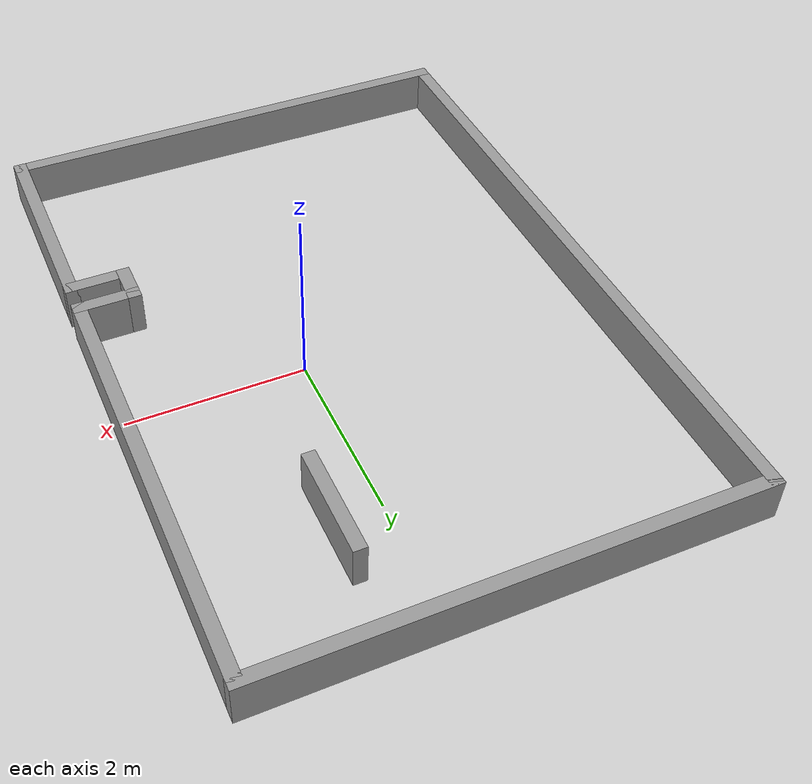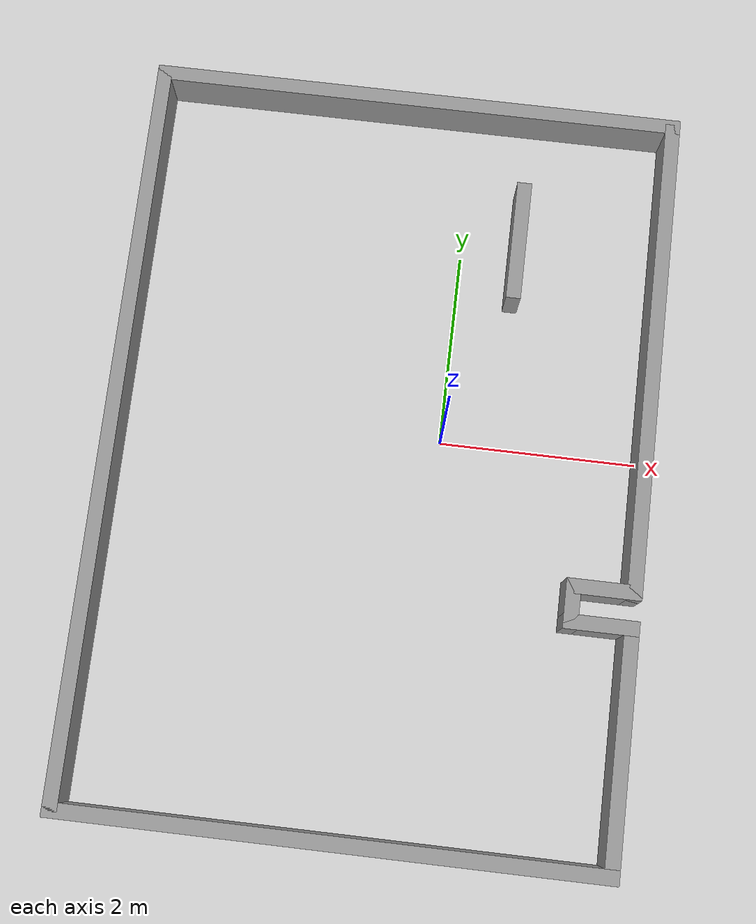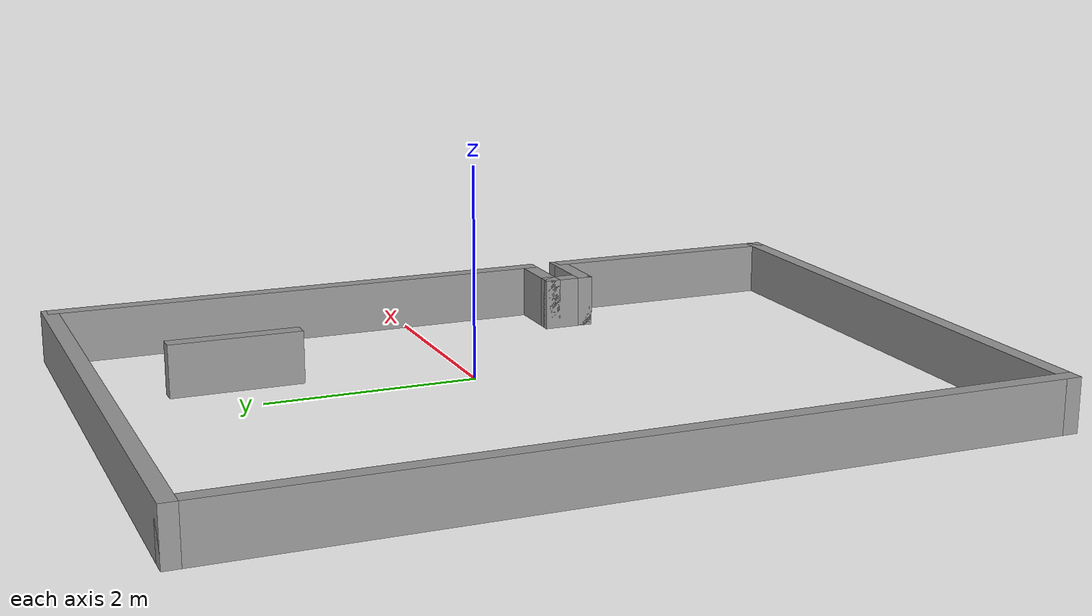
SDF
<?xml version='1.0'?>
<sdf version='1.7'>
  <model name='downstairs_building'>
    <pose>-0.638414 -0.270406 0 0 -0 0</pose>
    <link name='Wall_10'>
      <collision name='Wall_10_Collision'>
        <geometry>
          <box>
            <size>0.5 0.15 0.5</size>
          </box>
        </geometry>
        <pose>0 0 0.25 0 -0 0</pose>
      </collision>
      <visual name='Wall_10_Visual'>
        <pose>0 0 0.25 0 -0 0</pose>
        <geometry>
          <box>
            <size>0.5 0.15 0.5</size>
          </box>
        </geometry>
        <material>
          <script>
            <uri>file://media/materials/scripts/gazebo.material</uri>
            <name>Gazebo/Grey</name>
          </script>
          <ambient>1 1 1 1</ambient>
        </material>
        <meta>
          <layer>0</layer>
        </meta>
      </visual>
      <pose>2.075 -1.275 0 0 -0 1.5708</pose>
    </link>
    <link name='Wall_11'>
      <collision name='Wall_11_Collision'>
        <geometry>
          <box>
            <size>0.75 0.15 0.5</size>
          </box>
        </geometry>
        <pose>0 0 0.25 0 -0 0</pose>
      </collision>
      <visual name='Wall_11_Visual'>
        <pose>0 0 0.25 0 -0 0</pose>
        <geometry>
          <box>
            <size>0.75 0.15 0.5</size>
          </box>
        </geometry>
        <material>
          <script>
            <uri>file://media/materials/scripts/gazebo.material</uri>
            <name>Gazebo/Grey</name>
          </script>
          <ambient>1 1 1 1</ambient>
        </material>
        <meta>
          <layer>0</layer>
        </meta>
      </visual>
      <pose>2.375 -1.1 0 0 -0 0</pose>
    </link>
    <link name='Wall_12'>
      <collision name='Wall_12_Collision'>
        <geometry>
          <box>
            <size>5 0.15 0.5</size>
          </box>
        </geometry>
        <pose>0 0 0.25 0 -0 0</pose>
      </collision>
      <visual name='Wall_12_Visual'>
        <pose>0 0 0.25 0 -0 0</pose>
        <geometry>
          <box>
            <size>5 0.15 0.5</size>
          </box>
        </geometry>
        <material>
          <script>
            <uri>file://media/materials/scripts/gazebo.material</uri>
            <name>Gazebo/Grey</name>
          </script>
          <ambient>1 1 1 1</ambient>
        </material>
        <meta>
          <layer>0</layer>
        </meta>
      </visual>
      <pose>2.675 1.325 0 0 -0 1.5708</pose>
    </link>
    <link name='Wall_16'>
      <collision name='Wall_16_Collision'>
        <geometry>
          <box>
            <size>5.5 0.15 0.5</size>
          </box>
        </geometry>
        <pose>0 0 0.25 0 -0 0</pose>
      </collision>
      <visual name='Wall_16_Visual'>
        <pose>0 0 0.25 0 -0 0</pose>
        <geometry>
          <box>
            <size>5.5 0.15 0.5</size>
          </box>
        </geometry>
        <material>
          <script>
            <uri>file://media/materials/scripts/gazebo.material</uri>
            <name>Gazebo/Grey</name>
          </script>
          <ambient>1 1 1 1</ambient>
        </material>
        <meta>
          <layer>0</layer>
        </meta>
      </visual>
      <pose>0 -3.8 0 0 -0 3.14159</pose>
    </link>
    <link name='Wall_17'>
      <collision name='Wall_17_Collision'>
        <geometry>
          <box>
            <size>7.75 0.15 0.5</size>
          </box>
        </geometry>
        <pose>0 0 0.25 0 -0 0</pose>
      </collision>
      <visual name='Wall_17_Visual'>
        <pose>0 0 0.25 0 -0 0</pose>
        <geometry>
          <box>
            <size>7.75 0.15 0.5</size>
          </box>
        </geometry>
        <material>
          <script>
            <uri>file://media/materials/scripts/gazebo.material</uri>
            <name>Gazebo/Grey</name>
          </script>
          <ambient>1 1 1 1</ambient>
        </material>
        <meta>
          <layer>0</layer>
        </meta>
      </visual>
      <pose>-2.675 -0 0 0 -0 1.5708</pose>
    </link>
    <link name='Wall_18'>
      <collision name='Wall_18_Collision'>
        <geometry>
          <box>
            <size>5.50023 0.15 0.5</size>
          </box>
        </geometry>
        <pose>0 0 0.25 0 -0 0</pose>
      </collision>
      <visual name='Wall_18_Visual'>
        <pose>0 0 0.25 0 -0 0</pose>
        <geometry>
          <box>
            <size>5.50023 0.15 0.5</size>
          </box>
        </geometry>
        <material>
          <script>
            <uri>file://media/materials/scripts/gazebo.material</uri>
            <name>Gazebo/Grey</name>
          </script>
          <ambient>1 1 1 1</ambient>
        </material>
        <meta>
          <layer>0</layer>
        </meta>
      </visual>
      <pose>0 3.8 0 0 -0 0</pose>
    </link>
    <link name='Wall_20'>
      <collision name='Wall_20_Collision'>
        <geometry>
          <box>
            <size>1.25 0.15 0.5</size>
          </box>
        </geometry>
        <pose>0 0 0.25 0 -0 0</pose>
      </collision>
      <visual name='Wall_20_Visual'>
        <pose>0 0 0.25 0 -0 0</pose>
        <geometry>
          <box>
            <size>1.25 0.15 0.5</size>
          </box>
        </geometry>
        <material>
          <script>
            <uri>file://media/materials/scripts/gazebo.material</uri>
            <name>Gazebo/Grey</name>
          </script>
          <ambient>1 1 1 1</ambient>
        </material>
        <meta>
          <layer>0</layer>
        </meta>
      </visual>
      <pose>1.20049 2.38048 0 0 -0 -1.5708</pose>
    </link>
    <link name='Wall_4'>
      <collision name='Wall_4_Collision'>
        <geometry>
          <box>
            <size>2.5 0.15 0.5</size>
          </box>
        </geometry>
        <pose>0 0 0.25 0 -0 0</pose>
      </collision>
      <visual name='Wall_4_Visual'>
        <pose>0 0 0.25 0 -0 0</pose>
        <geometry>
          <box>
            <size>2.5 0.15 0.5</size>
          </box>
        </geometry>
        <material>
          <script>
            <uri>file://media/materials/scripts/gazebo.material</uri>
            <name>Gazebo/Grey</name>
          </script>
          <ambient>1 1 1 1</ambient>
        </material>
        <meta>
          <layer>0</layer>
        </meta>
      </visual>
      <pose>2.675 -2.625 0 0 -0 1.5708</pose>
    </link>
    <link name='Wall_9'>
      <collision name='Wall_9_Collision'>
        <geometry>
          <box>
            <size>0.75 0.15 0.5</size>
          </box>
        </geometry>
        <pose>0 0 0.25 0 -0 0</pose>
      </collision>
      <visual name='Wall_9_Visual'>
        <pose>0 0 0.25 0 -0 0</pose>
        <geometry>
          <box>
            <size>0.75 0.15 0.5</size>
          </box>
        </geometry>
        <material>
          <script>
            <uri>file://media/materials/scripts/gazebo.material</uri>
            <name>Gazebo/Grey</name>
          </script>
          <ambient>1 1 1 1</ambient>
        </material>
        <meta>
          <layer>0</layer>
        </meta>
      </visual>
      <pose>2.375 -1.45 0 0 -0 3.14159</pose>
    </link>
    <static>1</static>
  </model>
</sdf>
